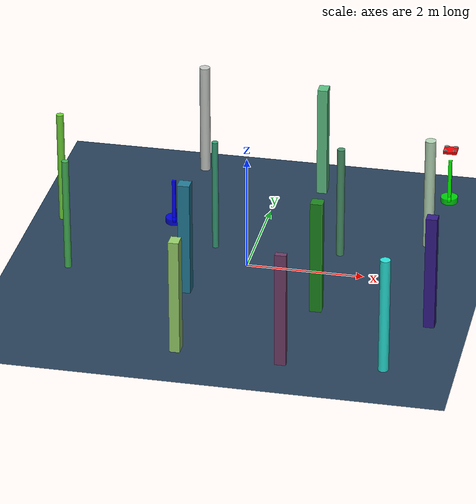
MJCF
<mujoco model="complex_uav_env">
  <compiler angle="degree" coordinate="local" inertiafromgeom="true"/>
  <option integrator="RK4" timestep="0.01"/>

  <visual>
    <headlight diffuse="0.6 0.6 0.6" ambient="0.3 0.3 0.3"/>
    <rgba haze="0.15 0.25 0.35 1"/>
    <global offwidth="2560" offheight="1440"/>
  </visual>

  <asset>
    <texture type="skybox" builtin="gradient" rgb1="0.3 0.5 0.7" rgb2="0 0 0" width="512" height="3072"/>
    <texture name="grid" type="2d" builtin="checker" rgb1="0.1 0.2 0.3" rgb2="0.2 0.3 0.4" width="512" height="512"/>
    <material name="grid" texture="grid" texrepeat="1 1" reflectance="0.2"/>
  </asset>

  <worldbody>
    <!-- Ground plane -->
    <geom name="ground" type="plane" size="4.0 4.0 0.1" material="grid"/>
    <light name="light1" pos="0 0 4" dir="0 0 -1" diffuse="1 1 1"/>

    <!-- Start position marker (green) -->
    <geom name="start_marker" type="cylinder" size="0.15 0.05" pos="3.0 3.0 0.05" rgba="0 1 0 0.8"/>
    <geom name="start_pole" type="box" size="0.03 0.03 0.4" pos="3.0 3.0 0.4" rgba="0 1 0 1"/>

    <!-- Goal position marker (blue) -->
    <geom name="goal_marker" type="cylinder" size="0.15 0.05" pos="-1.5592778746177431 1.2821265460645144 0.05" rgba="0 0 1 0.8"/>
    <geom name="goal_pole" type="box" size="0.03 0.03 0.4" pos="-1.5592778746177431 1.2821265460645144 0.4" rgba="0 0 1 1"/>

    <!-- UAV starting position -->
    <body name="chassis" pos="3.0 3.0 1.0">
      <joint type="free" name="root"/>
      <geom type="box" size="0.12 0.12 0.02" rgba="1.0 0.0 0.0 1.0" mass="0.8"/>

      <!-- Propeller arms and motors -->
      <geom type="box" size="0.08 0.01 0.005" pos="0 0 0.01" rgba="0.3 0.3 0.3 1"/>
      <geom type="box" size="0.01 0.08 0.005" pos="0 0 0.01" rgba="0.3 0.3 0.3 1"/>

      <!-- Motor visual geometry -->
      <geom type="cylinder" size="0.015 0.02" pos="0.08 0.08 0.015" rgba="0.2 0.2 0.2 1"/>
      <geom type="cylinder" size="0.015 0.02" pos="-0.08 0.08 0.015" rgba="0.2 0.2 0.2 1"/>
      <geom type="cylinder" size="0.015 0.02" pos="0.08 -0.08 0.015" rgba="0.2 0.2 0.2 1"/>
      <geom type="cylinder" size="0.015 0.02" pos="-0.08 -0.08 0.015" rgba="0.2 0.2 0.2 1"/>

      <!-- Propellers -->
      <geom type="cylinder" size="0.04 0.002" pos="0.08 0.08 0.035" rgba="0.7 0.7 0.7 0.8"/>
      <geom type="cylinder" size="0.04 0.002" pos="-0.08 0.08 0.035" rgba="0.7 0.7 0.7 0.8"/>
      <geom type="cylinder" size="0.04 0.002" pos="0.08 -0.08 0.035" rgba="0.7 0.7 0.7 0.8"/>
      <geom type="cylinder" size="0.04 0.002" pos="-0.08 -0.08 0.035" rgba="0.7 0.7 0.7 0.8"/>

      <!-- Sites for motor force application -->
      <site name="motor1" pos="0.08 0.08 0" size="0.01"/>
      <site name="motor2" pos="-0.08 0.08 0" size="0.01"/>
      <site name="motor3" pos="0.08 -0.08 0" size="0.01"/>
      <site name="motor4" pos="-0.08 -0.08 0" size="0.01"/>
    </body>
    <geom name="test_obs_0" type="cylinder" size="0.058836780630456734 1.0" pos="-2.9623304138973507 -0.6468935745817881 1.0" rgba="0.26553875144294936 0.7041514609797314 0.33618580403844717 1.0"/>
    <geom name="test_obs_1" type="box" size="0.09956174050946098 0.10251478759274565 1.0" pos="1.4267146436698752 -1.2352706488380005 1.0" rgba="0.11025090463438865 0.5224997010650901 0.11271076371573763 1.0"/>
    <geom name="test_obs_2" type="cylinder" size="0.06682885168576272 1.0" pos="1.4691742812322266 0.7050517034348639 1.0" rgba="0.2896920064226272 0.575257698886638 0.4085875510354934 1.0"/>
    <geom name="test_obs_3" type="box" size="0.10240530106323459 0.10603172363896674 1.0" pos="-0.8309239051234787 -1.0404496777990175 1.0" rgba="0.13154583508537776 0.48231058317756603 0.5927374193103073 1.0"/>
    <geom name="test_obs_4" type="cylinder" size="0.08614246767232042 1.0" pos="2.8472162291728633 -2.9515571539454784 1.0" rgba="0.1525742985334298 0.8961966294423658 0.8519803765781881 1.0"/>
    <geom name="test_obs_5" type="cylinder" size="0.06449094229920313 1.0" pos="-3.492191033972853 1.0364181043904908 1.0" rgba="0.429525600529985 0.8327183938183881 0.2119360926039991 1.0"/>
    <geom name="test_obs_6" type="box" size="0.08919988808213195 0.11465264966982983 1.0" pos="0.7417782555326458 2.968660294328452 1.0" rgba="0.36443022174578577 0.7536352050204927 0.5182717215079891 1.0"/>
    <geom name="test_obs_7" type="cylinder" size="0.09284402307912497 1.0" pos="2.8894140061572715 1.3332812367064988 1.0" rgba="0.7182671367548337 0.851993037362581 0.7215449801495246 1.0"/>
    <geom name="test_obs_8" type="cylinder" size="0.05354101318673605 1.0" pos="-0.6663897734417175 0.5460200835782428 1.0" rgba="0.20999249715612223 0.6200403415953808 0.4675166434172875 1.0"/>
    <geom name="test_obs_9" type="box" size="0.0846211547948015 0.11332283200367965 1.0" pos="-0.5491360548490416 -2.9823992914053954 1.0" rgba="0.5886049628503125 0.8099312170778662 0.41738688778386634 1.0"/>
    <geom name="test_obs_10" type="box" size="0.09384222650318433 0.05189936218401352 1.0" pos="1.1994422149865644 -3.1023188657900485 1.0" rgba="0.43020588764318723 0.2318980683369155 0.4018955186307752 1.0"/>
    <geom name="test_obs_11" type="cylinder" size="0.09242995638336778 1.0" pos="-1.4685470480564171 3.372301837115066 1.0" rgba="0.7776270428894233 0.7921820344141624 0.7765094009771174 1.0"/>
    <geom name="test_obs_12" type="box" size="0.0933137810996654 0.09269008569456705 1.0" pos="3.3465320398956684 -1.386630623371985 1.0" rgba="0.19681499826998908 0.10321546051680618 0.5368259443676873 1.0"/>
  </worldbody>

  <actuator>
    <motor name="m1" gear="0 0 1 0 0 0" site="motor1"/>
    <motor name="m2" gear="0 0 1 0 0 0" site="motor2"/>
    <motor name="m3" gear="0 0 1 0 0 0" site="motor3"/>
    <motor name="m4" gear="0 0 1 0 0 0" site="motor4"/>
  </actuator>
</mujoco>
